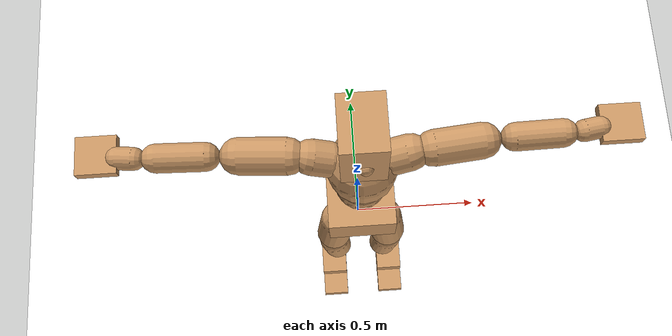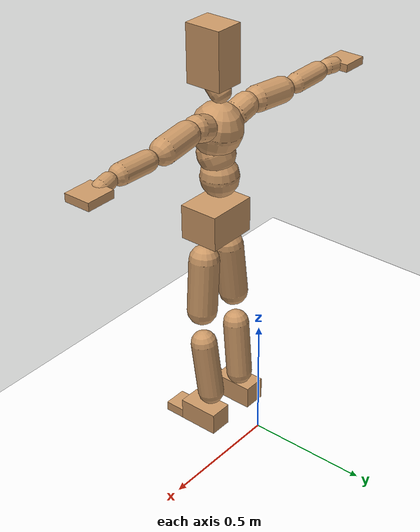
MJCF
<mujoco model="humanoid">
  <option integrator="implicitfast" />

  <visual>
    <global offwidth="1280" offheight="960" />
    <headlight active="1" ambient="0.34 0.34 0.34" diffuse="0.5 0.5 0.5" />
  </visual>

  <default>
    <joint damping="2" stiffness="2" armature="0.01" limited="true" solimplimit="0 .99 .01" />
    <geom condim="1" friction="0.7 0.005 0.0001" solimp=".99 .99 .003" solref="0.015 1" margin="0.001" rgba="0.8 0.6 .4 1" />
    <default class="smplcontact">
      <geom condim="3" friction="1. 0.005 0.0001" solref="0.015 1" solimp="0.98 0.98 0.001" priority="1" />
    </default>
    <default class="stiff_medium">
      <joint stiffness="10" />
    </default>
    <default class="stiff_medium_higher">
      <joint stiffness="50" />
    </default>
    <default class="stiff_high">
      <joint stiffness="100" />
    </default>
  </default>

  <asset>
    <texture type="skybox" builtin="gradient" rgb1="0.99 0.99 0.99" rgb2="0.608 0.828 0.892" width="100" />
    <texture builtin="flat" height="1278" mark="cross" markrgb="1 1 1" name="texgeom" random="0.01" rgb1="0.8 0.6 0.4" rgb2="0.8 0.6 0.4" type="cube" width="127" />
    <texture name="texplane" type="2d" builtin="checker" markrgb="1 1 1" rgb1="0.756 0.772 0.76" rgb2="0.6 0.6 0.6" width="100" height="100" />
    <material name="MatPlane" reflectance="0.5" texture="texplane" texrepeat="1 1" texuniform="true" />
    <material name="geom" texture="texgeom" texuniform="true" />
  </asset>

  <worldbody>
    <light name="tracking_light" pos="0 0 7" dir="0 0 -1" directional="true" cutoff="100" exponent="1" diffuse="1 1 1" specular="0.1 0.1 0.1" mode="trackcom" />
    <camera name="back" pos="0 3 2.4" xyaxes="-1 0 0 0 -1 2" mode="trackcom" />
    <camera name="side" pos="-3 0 2.4" xyaxes="0 -1 0 1 0 2" mode="trackcom" />
    <camera name="front_side" pos="-2.8 -2.8 0.8" xyaxes="0.5 -0.5 0 0.1 0.1 1" mode="trackcom" />
    <geom condim="3" name="floor" pos="0 0 0" rgba="1 1 1 1" size="100 100 .2" type="plane" material="MatPlane" />
    <body name="Pelvis" pos="-0.0018 -0.2233 0.9367" euler="90 0 0">
      <site name="Pelvis" size="0.01" />
      <freejoint name="Pelvis" />
      <geom type="box" pos="-0.0000 -0.0121 -0.0055" size="0.1069 0.0722 0.083" quat="1.0000 0.0000 0.0000 0.0000" density="3165.830099" name="Pelvis" />
      <body name="L_Hip" pos="0.0695 -0.0914 -0.0068">
        <joint name="L_Hip_x" type="hinge" pos="0 0 0" axis="1 0 0" stiffness="10.0" range="-160.0 22.92" class="stiff_medium" damping="15.0" armature="0.01"/>
        <joint name="L_Hip_y" type="hinge" pos="0 0 0" axis="0 1 0" stiffness="10.0" range="-70.0 70.0" class="stiff_medium" damping="10.000000000000004" armature="0.010000000000000009"/>
        <joint name="L_Hip_z" type="hinge" pos="0 0 0" axis="0 0 1" stiffness="10.0" range="-28.65 90.0" class="stiff_medium" damping="9.999999999999998" armature="0.009999999999999997"/>
        <geom type="capsule" density="2040.816327" fromto="0.0069 -0.075 -0.0009 0.0274 -0.3002 -0.0036" size="0.0615" name="L_Hip" />
        <body name="L_Knee" pos="0.0343 -0.3752 -0.0045">
          <joint name="L_Knee_x" type="hinge" pos="0 0 0" axis="1 0 0" range="-5.16 171.89" damping="8.000000000000002" armature="0.010000000000000005" stiffness="2.0"/>
          <joint name="L_Knee_y" type="hinge" pos="0 0 0" axis="0 1 0" range="-4.58 6.88" damping="8.000000000000002" armature="0.010000000000000007" stiffness="2.0"/>
          <joint name="L_Knee_z" type="hinge" pos="0 0 0" axis="0 0 1" range="-6.88 4.58" damping="7.9999999999999964" armature="0.009999999999999992" stiffness="2.0"/>
          <geom type="capsule" density="1234.567901" fromto="-0.0027 -0.0796 -0.0087 -0.0109 -0.3184 -0.035" size="0.0541" name="L_Knee" />
          <body name="L_Ankle" pos="-0.0136 -0.398 -0.0437">
            <joint name="L_Ankle_x" type="hinge" pos="0 0 0" axis="1 0 0" range="-45.84 45.84" class="stiff_medium" damping="6.000000000000055" armature="0.010000000000000182" stiffness="10.0"/>
            <joint name="L_Ankle_y" type="hinge" pos="0 0 0" axis="0 1 0" range="-74.48 22.92" class="stiff_medium" damping="3.0" armature="0.01" stiffness="10.0"/>
            <joint name="L_Ankle_z" type="hinge" pos="0 0 0" axis="0 0 1" range="-4.58 4.58" class="stiff_medium" damping="5.99999999999994" armature="0.0099999999999998" stiffness="10.0"/>
            <geom type="box" pos="0.0233 -0.0239 0.0242" size="0.0483 0.0464 0.085" quat="1.0000 0.0000 0.0000 0.0000" density="449.071558" name="L_Ankle" class="smplcontact" />
            <body name="L_Toe" pos="0.0264 -0.0558 0.1193">
              <joint name="L_Toe_x" type="hinge" pos="0 0 0" axis="1 0 0" range="-91.67 22.92" armature="0.009999999999999626" damping="1.9999999999999625" stiffness="2.0"/>
              <joint name="L_Toe_y" type="hinge" pos="0 0 0" axis="0 1 0" range="-4.58 4.58" armature="0.01" damping="2.0" stiffness="2.0"/>
              <joint name="L_Toe_z" type="hinge" pos="0 0 0" axis="0 0 1" range="-4.58 4.58" armature="0.009999999999999423" damping="1.999999999999942" stiffness="2.0"/>
              <geom type="box" pos="-0.003 0.0055 0.0248" size="0.0478 0.02 0.0496" quat="1.0000 0.0000 0.0000 0.0000" density="423.206892" name="L_Toe" class="smplcontact" />
            </body>
          </body>
        </body>
      </body>
      <body name="R_Hip" pos="-0.0677 -0.0905 -0.0043">
        <joint name="R_Hip_x" type="hinge" pos="0 0 0" axis="1 0 0" stiffness="10.0" range="-160.0 22.92" class="stiff_medium" damping="15.0" armature="0.01"/>
        <joint name="R_Hip_y" type="hinge" pos="0 0 0" axis="0 1 0" stiffness="10.0" range="-70.0 70.0" class="stiff_medium" damping="10.000000000000004" armature="0.010000000000000009"/>
        <joint name="R_Hip_z" type="hinge" pos="0 0 0" axis="0 0 1" stiffness="10.0" range="-90.0 28.65" class="stiff_medium" damping="9.999999999999998" armature="0.009999999999999997"/>
        <geom type="capsule" density="2040.816327" fromto="-0.0077 -0.0765 -0.0018 -0.0306 -0.3061 -0.0071" size="0.0606" name="R_Hip" />
        <body name="R_Knee" pos="-0.0383 -0.3826 -0.0089">
          <joint name="R_Knee_x" type="hinge" pos="0 0 0" axis="1 0 0" range="-5.16 171.89" damping="8.000000000000002" armature="0.010000000000000005" stiffness="2.0"/>
          <joint name="R_Knee_y" type="hinge" pos="0 0 0" axis="0 1 0" range="-6.88 4.58" damping="8.000000000000002" armature="0.010000000000000007" stiffness="2.0"/>
          <joint name="R_Knee_z" type="hinge" pos="0 0 0" axis="0 0 1" range="-4.58 6.88" damping="7.9999999999999964" armature="0.009999999999999992" stiffness="2.0"/>
          <geom type="capsule" density="1234.567901" fromto="0.0032 -0.0797 -0.0085 0.0126 -0.3187 -0.0338" size="0.0541" name="R_Knee" />
          <body name="R_Ankle" pos="0.0158 -0.3984 -0.0423">
            <joint name="R_Ankle_x" type="hinge" pos="0 0 0" axis="1 0 0" range="-45.84 45.84" class="stiff_medium" damping="6.000000000000055" armature="0.010000000000000182" stiffness="10.0"/>
            <joint name="R_Ankle_y" type="hinge" pos="0 0 0" axis="0 1 0" range="-22.92 74.48" class="stiff_medium" damping="3.0" armature="0.01" stiffness="10.0"/>
            <joint name="R_Ankle_z" type="hinge" pos="0 0 0" axis="0 0 1" range="-4.58 4.58" class="stiff_medium" damping="5.99999999999994" armature="0.0099999999999998" stiffness="10.0"/>
            <geom type="box" pos="-0.0212 -0.0174 0.0256" size="0.0483 0.0478 0.0865" quat="1.0000 0.0000 0.0000 0.0000" density="434.700981" name="R_Ankle" class="smplcontact" />
            <body name="R_Toe" pos="-0.0254 -0.0481 0.1233">
              <joint name="R_Toe_x" type="hinge" pos="0 0 0" axis="1 0 0" range="-91.67 22.92" armature="0.009999999999999626" damping="1.9999999999999625" stiffness="2.0"/>
              <joint name="R_Toe_y" type="hinge" pos="0 0 0" axis="0 1 0" range="-4.58 4.58" armature="0.01" damping="2.0" stiffness="2.0"/>
              <joint name="R_Toe_z" type="hinge" pos="0 0 0" axis="0 0 1" range="-4.58 4.58" armature="0.009999999999999423" damping="1.999999999999942" stiffness="2.0"/>
              <geom type="box" pos="0.0042 0.0045 0.0227" size="0.0479 0.0216 0.0493" quat="1.0000 0.0000 0.0000 0.0000" density="407.384095" name="R_Toe" class="smplcontact" />
            </body>
          </body>
        </body>
      </body>
      <body name="Torso" pos="-0.0025 0.109 -0.0267">
        <joint name="Torso_x" type="hinge" pos="0 0 0" axis="1 0 0" range="-25.78 57.3" class="stiff_medium" damping="14.377725126950711" armature="0.009518929822817207" stiffness="9.651831020408164"/>
        <joint name="Torso_y" type="hinge" pos="0 0 0" axis="0 1 0" range="-57.3 57.3" class="stiff_high" damping="17.047281200761134" armature="0.007489541703378378" stiffness="97.00519999999999"/>
        <joint name="Torso_z" type="hinge" pos="0 0 0" axis="0 0 1" range="-34.38 34.38" class="stiff_high" damping="18.565365135129568" armature="0.008825226346331873" stiffness="97.63851063829787"/>
        <geom type="capsule" density="2040.816327" fromto="0.0025 0.0608 0.0005 0.003 0.0743 0.0006" size="0.0769" name="Torso" />
        <body name="Spine" pos="0.0055 0.1352 0.0011">
          <joint name="Spine_x" type="hinge" pos="0 0 0" axis="1 0 0" stiffness="9.58583163265306" range="-25.78 57.3" class="stiff_medium" damping="14.26918361208374" armature="0.009440303089812765"/>
          <joint name="Spine_y" type="hinge" pos="0 0 0" axis="0 1 0" stiffness="9.576922244897958" range="-57.3 57.3" class="stiff_high" damping="6.76738571868883" armature="0.007471983870182017"/>
          <joint name="Spine_z" type="hinge" pos="0 0 0" axis="0 0 1" stiffness="19.01161469387755" range="-34.38 34.38" class="stiff_high" damping="10.689541255547073" armature="0.00834769619738186"/>
          <geom type="capsule" density="2040.816327" fromto="0.0007 0.0238 0.0114 0.0008 0.0291 0.014" size="0.0755" name="Spine" />
          <body name="Chest" pos="0.0015 0.0529 0.0254">
            <joint name="Chest_x" type="hinge" pos="0 0 0" axis="1 0 0" stiffness="9.387211020408163" range="-25.78 57.3" class="stiff_medium" damping="14.087997898862083" armature="0.009396788619791438"/>
            <joint name="Chest_y" type="hinge" pos="0 0 0" axis="0 1 0" stiffness="8.88616191489362" range="-57.3 57.3" class="stiff_high" damping="6.5161693940165115" armature="0.007466043829259931"/>
            <joint name="Chest_z" type="hinge" pos="0 0 0" axis="0 0 1" stiffness="18.95676244897959" range="-34.38 34.38" class="stiff_high" damping="10.53982249103985" armature="0.008138979020284563"/>
            <geom type="capsule" density="2040.816327" fromto="-0.0009 0.0682 -0.0173 -0.001 0.0833 -0.0212" size="0.1002" name="Chest" />
            <body name="Neck" pos="-0.0028 0.2139 -0.0429">
              <joint name="Neck_x" type="hinge" pos="0 0 0" axis="1 0 0" range="-28.65 57.3" class="stiff_medium_higher" damping="10.0" armature="0.01" stiffness="50.0"/>
              <joint name="Neck_y" type="hinge" pos="0 0 0" axis="0 1 0" range="-40.11 40.11" class="stiff_medium_higher" damping="10.0" armature="0.01" stiffness="50.0"/>
              <joint name="Neck_z" type="hinge" pos="0 0 0" axis="0 0 1" range="-40.11 40.11" class="stiff_medium_higher" damping="9.999999999999996" armature="0.009999999999999992" stiffness="50.0"/>
              <geom type="capsule" density="1000" fromto="0.001 0.013 0.0103 0.0041 0.052 0.0411" size="0.0436" name="Neck" />
              <body name="Head" pos="0.0052 0.065 0.0513">
                <joint name="Head_x" type="hinge" pos="0 0 0" axis="1 0 0" range="-28.65 57.3" class="stiff_medium_higher" damping="2.0000000000000004" armature="0.010000000000000005" stiffness="50.0"/>
                <joint name="Head_y" type="hinge" pos="0 0 0" axis="0 1 0" range="-40.11 40.11" class="stiff_medium_higher" damping="1.9999999999999998" armature="0.009999999999999998" stiffness="50.0"/>
                <joint name="Head_z" type="hinge" pos="0 0 0" axis="0 0 1" range="-40.11 40.11" class="stiff_medium_higher" damping="1.9999999999999998" armature="0.009999999999999998" stiffness="50.0"/>
                <geom type="box" pos="-0.0042 0.0876 -0.0116" size="0.0606 0.1154 0.076" quat="1.0000 0.0000 0.0000 0.0000" density="1018.069894" name="Head" />
                <geom type="capsule" name="nose" size="0.02 0.01" pos="0 0.07 0.05" quat="1 0 0 0" mass="0" contype="0" conaffinity="0" />
              </body>
            </body>
            <body name="L_Thorax" pos="0.069935 0.108009 -0.0302637">
              <joint name="L_Thorax_x" type="hinge" pos="0 0 0" axis="1 0 0" range="-10.89 4.58" class="stiff_medium_higher" damping="16.503674429364285" armature="0.00823728971288069" stiffness="41.33205204081632"/>
              <joint name="L_Thorax_y" type="hinge" pos="0 0 0" axis="0 1 0" range="-28.65 17.19" class="stiff_medium_higher" damping="15.615380485833974" armature="0.007397181758642919" stiffness="41.2049"/>
              <joint name="L_Thorax_z" type="hinge" pos="0 0 0" axis="0 0 1" range="-31.51 40.11" class="stiff_medium_higher" damping="15.61484528881393" armature="0.0073964225804993" stiffness="41.206304591836734"/>
              <geom type="capsule" density="1000" fromto="0.0161525 0.00541375 -0.0015975 0.06461 0.021655 -0.00630125" size="0.0521" name="L_Thorax" />
              <body name="L_Shoulder" pos="0.0807625 0.0270687 -0.00789875">
                <joint name="L_Shoulder_x" type="hinge" pos="0 0 0" axis="1 0 0" range="-97.4 97.4" class="stiff_medium" damping="5.053222703168429" armature="0.008561219507331084" stiffness="8.28511887755102"/>
                <joint name="L_Shoulder_y" type="hinge" pos="0 0 0" axis="0 1 0" range="-108.86 80.21" class="stiff_medium" damping="4.696052433643628" armature="0.007424828192243075" stiffness="8.25043724489796"/>
                <joint name="L_Shoulder_z" type="hinge" pos="0 0 0" axis="0 0 1" range="-97.4 85.94" class="stiff_medium" damping="4.696316861704075" armature="0.007423822707357089" stiffness="8.252483979591837"/>
                <geom type="capsule" density="1000" fromto="0.0460612 -0.0023075 -0.00488125 0.184334 -0.0090525 -0.019525" size="0.0517" name="L_Shoulder" />
                <body name="L_Elbow" pos="0.230395 -0.01136 -0.0244062">
                  <joint name="L_Elbow_x" type="hinge" pos="0 0 0" axis="1 0 0" range="-17.19 4.58" damping="4.357905906305443" armature="0.009089595760700035" stiffness="1.6714797346938777"/>
                  <joint name="L_Elbow_y" type="hinge" pos="0 0 0" axis="0 1 0" range="-180.0 17.19" damping="3.9739600722787505" armature="0.007559999182253774" stiffness="1.6711492448979592"/>
                  <joint name="L_Elbow_z" type="hinge" pos="0 0 0" axis="0 0 1" range="-100.84 4.58" damping="3.9732408069423295" armature="0.007554721526974204" stiffness="1.671711387755102"/>
                  <geom type="capsule" density="1000" fromto="0.0441975 0.0015975 -0.0001775 0.176967 0.00639 -0.00079875" size="0.0405" name="L_Elbow" />
                  <body name="L_Wrist" pos="0.221165 0.0079875 -0.001065">
                    <joint name="L_Wrist_x" type="hinge" pos="0 0 0" axis="1 0 0" range="-180.0 22.92" armature="0.009268388983616186" damping="1.7953441559357817" stiffness="1.738846224489796"/>
                    <joint name="L_Wrist_y" type="hinge" pos="0 0 0" axis="0 1 0" range="-17.19 17.19" armature="0.008039907338787667" damping="1.6695812073111274" stiffness="1.7335407551020405"/>
                    <joint name="L_Wrist_z" type="hinge" pos="0 0 0" axis="0 0 1" range="-22.92 22.92" armature="0.007970783232335172" damping="1.6634142634626046" stiffness="1.7356807551020408"/>
                    <geom type="capsule" density="1000" fromto="0.01491 -0.00142 -0.0026625 0.05964 -0.00576875 -0.01065" size="0.0318" name="L_Wrist" class="smplcontact" />
                    <body name="L_Hand" pos="0.07455 -0.0072775 -0.0132237">
                      <joint name="L_Hand_x" type="hinge" pos="0 0 0" axis="1 0 0" range="-17.19 17.19" armature="0.009907489981019538" damping="1.875408510986378" stiffness="1.7749990612244897"/>
                      <joint name="L_Hand_y" type="hinge" pos="0 0 0" axis="0 1 0" range="-51.57 51.57" armature="0.008881214164335" damping="1.7756208279347816" stiffness="1.7749990408163265"/>
                      <joint name="L_Hand_z" type="hinge" pos="0 0 0" axis="0 0 1" range="-91.67 91.67" armature="0.008607646402111164" damping="1.7480597104275881" stiffness="1.7749990000000002"/>
                      <geom type="box" pos="0.0437537 0.0008875 -0.0051475" size="0.0585 0.0158 0.0538" quat="1.0000 0.0000 0.0000 0.0000" density="400.552564" name="L_Hand" class="smplcontact" />
                    </body>
                  </body>
                </body>
              </body>
            </body>
            <body name="R_Thorax" pos="-0.0725975 0.105435 -0.0342575">
              <joint name="R_Thorax_x" type="hinge" pos="0 0 0" axis="1 0 0" range="-10.89 4.58" class="stiff_medium_higher" damping="16.503674429364285" armature="0.00823728971288069" stiffness="41.33205204081632"/>
              <joint name="R_Thorax_y" type="hinge" pos="0 0 0" axis="0 1 0" range="-17.19 28.65" class="stiff_medium_higher" damping="15.615380485833974" armature="0.007397181758642919" stiffness="41.2049"/>
              <joint name="R_Thorax_z" type="hinge" pos="0 0 0" axis="0 0 1" range="-40.11 31.51" class="stiff_medium_higher" damping="15.61484528881393" armature="0.0073964225804993" stiffness="41.206304591836734"/>
              <geom type="capsule" density="1000" fromto="-0.01704 0.00576875 -0.0015975 -0.06816 0.023075 -0.00647875" size="0.0511" name="R_Thorax" />
              <body name="R_Shoulder" pos="-0.0852 0.0289325 -0.00807625">
                <joint name="R_Shoulder_x" type="hinge" pos="0 0 0" axis="1 0 0" range="-97.4 97.4" class="stiff_medium" damping="5.053222703168429" armature="0.008561219507331084" stiffness="8.28511887755102"/>
                <joint name="R_Shoulder_y" type="hinge" pos="0 0 0" axis="0 1 0" range="-80.21 108.86" class="stiff_medium" damping="4.696052433643628" armature="0.007424828192243075" stiffness="8.25043724489796"/>
                <joint name="R_Shoulder_z" type="hinge" pos="0 0 0" axis="0 0 1" range="-85.94 97.4" class="stiff_medium" damping="4.696316861704075" armature="0.007423822707357089" stiffness="8.252483979591837"/>
                <geom type="capsule" density="1000" fromto="-0.0449963 -0.00239625 -0.00381625 -0.180163 -0.00949625 -0.0151763" size="0.0531" name="R_Shoulder" />
                <body name="R_Elbow" pos="-0.225159 -0.0118037 -0.0189925">
                  <joint name="R_Elbow_x" type="hinge" pos="0 0 0" axis="1 0 0" range="-17.19 4.58" damping="4.357905906305443" armature="0.009089595760700035" stiffness="1.6714797346938777"/>
                  <joint name="R_Elbow_y" type="hinge" pos="0 0 0" axis="0 1 0" range="-17.19 180.0" damping="3.9739600722787505" armature="0.007559999182253774" stiffness="1.6711492448979592"/>
                  <joint name="R_Elbow_z" type="hinge" pos="0 0 0" axis="0 0 1" range="-4.58 100.84" damping="3.9732408069423295" armature="0.007554721526974204" stiffness="1.671711387755102"/>
                  <geom type="capsule" density="1000" fromto="-0.0453512 0.00142 -0.00097625 -0.181227 0.0055025 -0.003905" size="0.0408" name="R_Elbow" />
                  <body name="R_Wrist" pos="-0.226579 0.0069225 -0.00497">
                    <joint name="R_Wrist_x" type="hinge" pos="0 0 0" axis="1 0 0" range="-180.0 22.92" armature="0.009268388983616186" damping="1.7953441559357817" stiffness="1.738846224489796"/>
                    <joint name="R_Wrist_y" type="hinge" pos="0 0 0" axis="0 1 0" range="-17.19 17.19" armature="0.008039907338787667" damping="1.6695812073111274" stiffness="1.7335407551020405"/>
                    <joint name="R_Wrist_z" type="hinge" pos="0 0 0" axis="0 0 1" range="-22.92 22.92" armature="0.007970783232335172" damping="1.6634142634626046" stiffness="1.7356807551020408"/>
                    <geom type="capsule" density="1000" fromto="-0.0149987 -0.001065 -0.00186375 -0.0600837 -0.00434875 -0.00736625" size="0.0326" name="R_Wrist" class="smplcontact" />
                    <body name="R_Hand" pos="-0.0750825 -0.00541375 -0.00914125">
                      <joint name="R_Hand_x" type="hinge" pos="0 0 0" axis="1 0 0" range="-17.19 17.19" armature="0.009907489981019538" damping="1.875408510986378" stiffness="1.7749990612244897"/>
                      <joint name="R_Hand_y" type="hinge" pos="0 0 0" axis="0 1 0" range="-51.57 51.57" armature="0.008881214164335" damping="1.7756208279347816" stiffness="1.7749990408163265"/>
                      <joint name="R_Hand_z" type="hinge" pos="0 0 0" axis="0 0 1" range="-91.67 91.67" armature="0.008607646402111164" damping="1.7480597104275881" stiffness="1.7749990000000002"/>
                      <geom type="box" pos="-0.0410025 -0.00079875 -0.00701125" size="0.0569 0.0164 0.0546" quat="1.0000 0.0000 0.0000 0.0000" density="403.679611" name="R_Hand" class="smplcontact" />
                    </body>
                  </body>
                </body>
              </body>
            </body>
          </body>
        </body>
      </body>
    </body>
  </worldbody>
  <actuator>
    <general name="L_Hip_x" joint="L_Hip_x" biastype="affine" gainprm="287.33006409732246" biasprm="-215.3247604770444 -180.0 -2.0" ctrllimited="true" ctrlrange="-1 1" forcerange="-360.0 360.0" />
    <general name="L_Hip_y" joint="L_Hip_y" biastype="affine" gainprm="219.9114857512855" biasprm="0.0 -180.0 -2.000000000000001" ctrllimited="true" ctrlrange="-1 1" forcerange="-360.0 360.0" />
    <general name="L_Hip_z" joint="L_Hip_z" biastype="affine" gainprm="186.3749841742145" biasprm="96.3683546488669 -180.0 -1.9999999999999996" ctrllimited="true" ctrlrange="-1 1" forcerange="-360.0 360.0" />
    <general name="L_Knee_x" joint="L_Knee_x" biastype="affine" gainprm="278.10948965903646" biasprm="261.8988715665131 -180.0 -2.0000000000000004" ctrllimited="true" ctrlrange="-1 1" forcerange="-360.0 360.0" />
    <general name="L_Knee_y" joint="L_Knee_y" biastype="affine" gainprm="18.001325905069514" biasprm="3.612831551628262 -180.0 -2.0000000000000004" ctrllimited="true" ctrlrange="-1 1" forcerange="-360.0 360.0" />
    <general name="L_Knee_z" joint="L_Knee_z" biastype="affine" gainprm="18.001325905069514" biasprm="-3.612831551628262 -180.0 -1.9999999999999991" ctrllimited="true" ctrlrange="-1 1" forcerange="-360.0 360.0" />
    <general name="L_Ankle_x" joint="L_Ankle_x" biastype="affine" gainprm="72.00530362027807" biasprm="0.0 -90.0 -2.000000000000018" ctrllimited="true" ctrlrange="-1 1" forcerange="-180.0 180.0" />
    <general name="L_Ankle_y" joint="L_Ankle_y" biastype="affine" gainprm="76.49778111491148" biasprm="-40.49512930477244 -90.0 -2.0" ctrllimited="true" ctrlrange="-1 1" forcerange="-180.0 180.0" />
    <general name="L_Ankle_z" joint="L_Ankle_z" biastype="affine" gainprm="7.1942471767206255" biasprm="0.0 -90.0 -1.99999999999998" ctrllimited="true" ctrlrange="-1 1" forcerange="-180.0 180.0" />
    <general name="L_Toe_x" joint="L_Toe_x" biastype="affine" gainprm="71.99902043497087" biasprm="-43.19689898685965 -72.0 -0.7999999999999851" ctrllimited="true" ctrlrange="-1 1" forcerange="-144.0 144.0" />
    <general name="L_Toe_y" joint="L_Toe_y" biastype="affine" gainprm="5.755397741376501" biasprm="0.0 -72.0 -0.8" ctrllimited="true" ctrlrange="-1 1" forcerange="-144.0 144.0" />
    <general name="L_Toe_z" joint="L_Toe_z" biastype="affine" gainprm="5.755397741376501" biasprm="0.0 -72.0 -0.7999999999999768" ctrllimited="true" ctrlrange="-1 1" forcerange="-144.0 144.0" />
    <general name="R_Hip_x" joint="R_Hip_x" biastype="affine" gainprm="287.33006409732246" biasprm="-215.3247604770444 -180.0 -2.0" ctrllimited="true" ctrlrange="-1 1" forcerange="-360.0 360.0" />
    <general name="R_Hip_y" joint="R_Hip_y" biastype="affine" gainprm="219.9114857512855" biasprm="0.0 -180.0 -2.000000000000001" ctrllimited="true" ctrlrange="-1 1" forcerange="-360.0 360.0" />
    <general name="R_Hip_z" joint="R_Hip_z" biastype="affine" gainprm="186.3749841742145" biasprm="-96.3683546488669 -180.0 -1.9999999999999996" ctrllimited="true" ctrlrange="-1 1" forcerange="-360.0 360.0" />
    <general name="R_Knee_x" joint="R_Knee_x" biastype="affine" gainprm="278.10948965903646" biasprm="261.8988715665131 -180.0 -2.0000000000000004" ctrllimited="true" ctrlrange="-1 1" forcerange="-360.0 360.0" />
    <general name="R_Knee_y" joint="R_Knee_y" biastype="affine" gainprm="18.001325905069514" biasprm="-3.612831551628262 -180.0 -2.0000000000000004" ctrllimited="true" ctrlrange="-1 1" forcerange="-360.0 360.0" />
    <general name="R_Knee_z" joint="R_Knee_z" biastype="affine" gainprm="18.001325905069514" biasprm="3.612831551628262 -180.0 -1.9999999999999991" ctrllimited="true" ctrlrange="-1 1" forcerange="-360.0 360.0" />
    <general name="R_Ankle_x" joint="R_Ankle_x" biastype="affine" gainprm="72.00530362027807" biasprm="0.0 -90.0 -2.000000000000018" ctrllimited="true" ctrlrange="-1 1" forcerange="-180.0 180.0" />
    <general name="R_Ankle_y" joint="R_Ankle_y" biastype="affine" gainprm="76.49778111491148" biasprm="40.49512930477244 -90.0 -2.0" ctrllimited="true" ctrlrange="-1 1" forcerange="-180.0 180.0" />
    <general name="R_Ankle_z" joint="R_Ankle_z" biastype="affine" gainprm="7.1942471767206255" biasprm="0.0 -90.0 -1.99999999999998" ctrllimited="true" ctrlrange="-1 1" forcerange="-180.0 180.0" />
    <general name="R_Toe_x" joint="R_Toe_x" biastype="affine" gainprm="71.99902043497087" biasprm="-43.19689898685965 -72.0 -0.7999999999999851" ctrllimited="true" ctrlrange="-1 1" forcerange="-144.0 144.0" />
    <general name="R_Toe_y" joint="R_Toe_y" biastype="affine" gainprm="5.755397741376501" biasprm="0.0 -72.0 -0.8" ctrllimited="true" ctrlrange="-1 1" forcerange="-144.0 144.0" />
    <general name="R_Toe_z" joint="R_Toe_z" biastype="affine" gainprm="5.755397741376501" biasprm="0.0 -72.0 -0.7999999999999768" ctrllimited="true" ctrlrange="-1 1" forcerange="-144.0 144.0" />
    <general name="Torso_x" joint="Torso_x" biastype="affine" gainprm="167.94412321258363" biasprm="63.71688449278569 -231.64394448979593 -3.834060033853523" ctrllimited="true" ctrlrange="-1 1" forcerange="-347.4659167346939 347.4659167346939" />
    <general name="Torso_y" joint="Torso_y" biastype="affine" gainprm="232.82962929152654" biasprm="0.0 -232.81248 -3.409456240152227" ctrllimited="true" ctrlrange="-1 1" forcerange="-349.21871999999996 349.21871999999996" />
    <general name="Torso_z" joint="Torso_z" biastype="affine" gainprm="140.60981207084777" biasprm="0.0 -234.33242553191488 -3.7130730270259136" ctrllimited="true" ctrlrange="-1 1" forcerange="-351.49863829787233 351.49863829787233" />
    <general name="Spine_x" joint="Spine_x" biastype="affine" gainprm="166.79571838808337" biasprm="63.28118733259974 -230.05995918367344 -3.805115629888997" ctrllimited="true" ctrlrange="-1 1" forcerange="-345.0899387755102 345.0899387755102" />
    <general name="Spine_y" joint="Spine_y" biastype="affine" gainprm="229.8630646638908" biasprm="0.0 -229.846133877551 -3.383692859344415" ctrllimited="true" ctrlrange="-1 1" forcerange="-344.76920081632653 344.76920081632653" />
    <general name="Spine_z" joint="Spine_z" biastype="affine" gainprm="136.89370883443928" biasprm="0.0 -228.1393763265306 -3.5631804185156914" ctrllimited="true" ctrlrange="-1 1" forcerange="-342.2090644897959 342.2090644897959" />
    <general name="Chest_x" joint="Chest_x" biastype="affine" gainprm="163.33967315636679" biasprm="61.969986734336544 -225.29306448979594 -3.7567994396965556" ctrllimited="true" ctrlrange="-1 1" forcerange="-337.9395967346939 337.9395967346939" />
    <general name="Chest_y" joint="Chest_y" biastype="affine" gainprm="213.2835955669555" biasprm="0.0 -213.26788595744688 -3.2580846970082558" ctrllimited="true" ctrlrange="-1 1" forcerange="-319.9018289361703 319.9018289361703" />
    <general name="Chest_z" joint="Chest_z" biastype="affine" gainprm="136.49874357962614" biasprm="0.0 -227.48114938775507 -3.5132741636799496" ctrllimited="true" ctrlrange="-1 1" forcerange="-341.2217240816326 341.2217240816326" />
    <general name="Neck_x" joint="Neck_x" biastype="affine" gainprm="27.00198885760427" biasprm="9.000662952534757 -36.0 -0.8" ctrllimited="true" ctrlrange="-1 1" forcerange="-72.0 72.0" />
    <general name="Neck_y" joint="Neck_y" biastype="affine" gainprm="25.20185626709732" biasprm="0.0 -36.0 -0.8" ctrllimited="true" ctrlrange="-1 1" forcerange="-72.0 72.0" />
    <general name="Neck_z" joint="Neck_z" biastype="affine" gainprm="25.20185626709732" biasprm="0.0 -36.0 -0.7999999999999997" ctrllimited="true" ctrlrange="-1 1" forcerange="-72.0 72.0" />
    <general name="Head_x" joint="Head_x" biastype="affine" gainprm="18.001325905069514" biasprm="6.000441968356505 -24.0 -0.8000000000000003" ctrllimited="true" ctrlrange="-1 1" forcerange="-48.0 48.0" />
    <general name="Head_y" joint="Head_y" biastype="affine" gainprm="16.801237511398213" biasprm="0.0 -24.0 -0.7999999999999999" ctrllimited="true" ctrlrange="-1 1" forcerange="-48.0 48.0" />
    <general name="Head_z" joint="Head_z" biastype="affine" gainprm="16.801237511398213" biasprm="0.0 -24.0 -0.7999999999999999" ctrllimited="true" ctrlrange="-1 1" forcerange="-48.0 48.0" />
    <general name="L_Thorax_x" joint="L_Thorax_x" biastype="affine" gainprm="13.391705647542844" biasprm="-5.462292348803839 -99.19692489795918 -1.320293954349143" ctrllimited="true" ctrlrange="-1 1" forcerange="-198.39384979591836 198.39384979591836" />
    <general name="L_Thorax_y" joint="L_Thorax_y" biastype="affine" gainprm="39.55961780190927" biasprm="-9.889904450477317 -98.89176 -1.249230438866718" ctrllimited="true" ctrlrange="-1 1" forcerange="-197.78352 197.78352" />
    <general name="L_Thorax_z" joint="L_Thorax_z" biastype="affine" gainprm="61.80969474430838" biasprm="7.4219962971383975 -98.89513102040816 -1.2491876231051144" ctrllimited="true" ctrlrange="-1 1" forcerange="-197.79026204081632 197.79026204081632" />
    <general name="L_Shoulder_x" joint="L_Shoulder_x" biastype="affine" gainprm="67.60460910996468" biasprm="0.0 -39.768570612244886 -1.347526054178248" ctrllimited="true" ctrlrange="-1 1" forcerange="-79.53714122448977 79.53714122448977" />
    <general name="L_Shoulder_y" joint="L_Shoulder_y" biastype="affine" gainprm="65.34136439993874" biasprm="-9.901253980315465 -39.6020987755102 -1.252280648971634" ctrllimited="true" ctrlrange="-1 1" forcerange="-79.2041975510204 79.2041975510204" />
    <general name="L_Shoulder_z" joint="L_Shoulder_z" biastype="affine" gainprm="63.376831969533896" biasprm="-3.9614840971466134 -39.61192310204081 -1.2523511631210866" ctrllimited="true" ctrlrange="-1 1" forcerange="-79.22384620408162 79.22384620408162" />
    <general name="L_Elbow_x" joint="L_Elbow_x" biastype="affine" gainprm="11.43166310683652" biasprm="-6.621647761929654 -60.17327044897959 -0.6972649450088708" ctrllimited="true" ctrlrange="-1 1" forcerange="-120.34654089795919 120.34654089795919" />
    <general name="L_Elbow_y" joint="L_Elbow_y" biastype="affine" gainprm="103.52613409284974" biasprm="-85.47639277679836 -60.16137281632653 -0.6358336115646002" ctrllimited="true" ctrlrange="-1 1" forcerange="-120.32274563265307 120.32274563265307" />
    <general name="L_Elbow_z" joint="L_Elbow_z" biastype="affine" gainprm="55.364857375302314" biasprm="-50.55417540264278 -60.181609959183675 -0.6357185291107728" ctrllimited="true" ctrlrange="-1 1" forcerange="-120.36321991836735 120.36321991836735" />
    <general name="L_Wrist_x" joint="L_Wrist_x" biastype="affine" gainprm="18.475008746127838" biasprm="-14.301470401349109 -10.433077346938775 -0.7181376623743128" ctrllimited="true" ctrlrange="-1 1" forcerange="-20.86615469387755 20.86615469387755" />
    <general name="L_Wrist_y" joint="L_Wrist_y" biastype="affine" gainprm="3.120603210231214" biasprm="0.0 -10.401244530612242 -0.667832482924451" ctrllimited="true" ctrlrange="-1 1" forcerange="-20.802489061224485 20.802489061224485" />
    <general name="L_Wrist_z" joint="L_Wrist_z" biastype="affine" gainprm="4.165940658633199" biasprm="0.0 -10.414084530612245 -0.6653657053850419" ctrllimited="true" ctrlrange="-1 1" forcerange="-20.82816906122449 20.82816906122449" />
    <general name="L_Hand_x" joint="L_Hand_x" biastype="affine" gainprm="3.1952336582294483" biasprm="0.0 -10.649994367346938 -0.7501634043945513" ctrllimited="true" ctrlrange="-1 1" forcerange="-21.299988734693876 21.299988734693876" />
    <general name="L_Hand_y" joint="L_Hand_y" biastype="affine" gainprm="9.585700864476143" biasprm="0.0 -10.64999424489796 -0.7102483311739127" ctrllimited="true" ctrlrange="-1 1" forcerange="-21.29998848979592 21.29998848979592" />
    <general name="L_Hand_z" joint="L_Hand_z" biastype="affine" gainprm="17.03938681481915" biasprm="0.0 -10.649994000000001 -0.6992238841710353" ctrllimited="true" ctrlrange="-1 1" forcerange="-21.299988000000003 21.299988000000003" />
    <general name="R_Thorax_x" joint="R_Thorax_x" biastype="affine" gainprm="13.391705647542844" biasprm="-5.462292348803839 -99.19692489795918 -1.320293954349143" ctrllimited="true" ctrlrange="-1 1" forcerange="-198.39384979591836 198.39384979591836" />
    <general name="R_Thorax_y" joint="R_Thorax_y" biastype="affine" gainprm="39.55961780190927" biasprm="9.889904450477312 -98.89176 -1.249230438866718" ctrllimited="true" ctrlrange="-1 1" forcerange="-197.78352 197.78352" />
    <general name="R_Thorax_z" joint="R_Thorax_z" biastype="affine" gainprm="61.80969474430838" biasprm="-7.4219962971383975 -98.89513102040816 -1.2491876231051144" ctrllimited="true" ctrlrange="-1 1" forcerange="-197.79026204081632 197.79026204081632" />
    <general name="R_Shoulder_x" joint="R_Shoulder_x" biastype="affine" gainprm="67.60460910996468" biasprm="0.0 -39.768570612244886 -1.347526054178248" ctrllimited="true" ctrlrange="-1 1" forcerange="-79.53714122448977 79.53714122448977" />
    <general name="R_Shoulder_y" joint="R_Shoulder_y" biastype="affine" gainprm="65.34136439993874" biasprm="9.901253980315465 -39.6020987755102 -1.252280648971634" ctrllimited="true" ctrlrange="-1 1" forcerange="-79.2041975510204 79.2041975510204" />
    <general name="R_Shoulder_z" joint="R_Shoulder_z" biastype="affine" gainprm="63.376831969533896" biasprm="3.9614840971466045 -39.61192310204081 -1.2523511631210866" ctrllimited="true" ctrlrange="-1 1" forcerange="-79.22384620408162 79.22384620408162" />
    <general name="R_Elbow_x" joint="R_Elbow_x" biastype="affine" gainprm="11.43166310683652" biasprm="-6.621647761929654 -60.17327044897959 -0.6972649450088708" ctrllimited="true" ctrlrange="-1 1" forcerange="-120.34654089795919 120.34654089795919" />
    <general name="R_Elbow_y" joint="R_Elbow_y" biastype="affine" gainprm="103.52613409284974" biasprm="85.47639277679836 -60.16137281632653 -0.6358336115646002" ctrllimited="true" ctrlrange="-1 1" forcerange="-120.32274563265307 120.32274563265307" />
    <general name="R_Elbow_z" joint="R_Elbow_z" biastype="affine" gainprm="55.364857375302314" biasprm="50.55417540264277 -60.181609959183675 -0.6357185291107728" ctrllimited="true" ctrlrange="-1 1" forcerange="-120.36321991836735 120.36321991836735" />
    <general name="R_Wrist_x" joint="R_Wrist_x" biastype="affine" gainprm="18.475008746127838" biasprm="-14.301470401349109 -10.433077346938775 -0.7181376623743128" ctrllimited="true" ctrlrange="-1 1" forcerange="-20.86615469387755 20.86615469387755" />
    <general name="R_Wrist_y" joint="R_Wrist_y" biastype="affine" gainprm="3.120603210231214" biasprm="0.0 -10.401244530612242 -0.667832482924451" ctrllimited="true" ctrlrange="-1 1" forcerange="-20.802489061224485 20.802489061224485" />
    <general name="R_Wrist_z" joint="R_Wrist_z" biastype="affine" gainprm="4.165940658633199" biasprm="0.0 -10.414084530612245 -0.6653657053850419" ctrllimited="true" ctrlrange="-1 1" forcerange="-20.82816906122449 20.82816906122449" />
    <general name="R_Hand_x" joint="R_Hand_x" biastype="affine" gainprm="3.1952336582294483" biasprm="0.0 -10.649994367346938 -0.7501634043945513" ctrllimited="true" ctrlrange="-1 1" forcerange="-21.299988734693876 21.299988734693876" />
    <general name="R_Hand_y" joint="R_Hand_y" biastype="affine" gainprm="9.585700864476143" biasprm="0.0 -10.64999424489796 -0.7102483311739127" ctrllimited="true" ctrlrange="-1 1" forcerange="-21.29998848979592 21.29998848979592" />
    <general name="R_Hand_z" joint="R_Hand_z" biastype="affine" gainprm="17.03938681481915" biasprm="0.0 -10.649994000000001 -0.6992238841710353" ctrllimited="true" ctrlrange="-1 1" forcerange="-21.299988000000003 21.299988000000003" />
  </actuator>
  <contact>
    <exclude body1="Torso" body2="Chest" />
    <exclude body1="Head" body2="Chest" />
    <exclude body1="R_Knee" body2="R_Toe" />
    <exclude body1="R_Knee" body2="L_Ankle" />
    <exclude body1="R_Knee" body2="L_Toe" />
    <exclude body1="L_Knee" body2="L_Toe" />
    <exclude body1="L_Knee" body2="R_Ankle" />
    <exclude body1="L_Knee" body2="R_Toe" />
    <exclude body1="L_Shoulder" body2="Chest" />
    <exclude body1="R_Shoulder" body2="Chest" />
  </contact>
  <sensor>
    <framelinvel name="sensor_Pelvis_framelinvel" objtype="xbody" objname="Pelvis" />
    <framelinvel name="sensor_L_Hip_framelinvel" objtype="xbody" objname="L_Hip" />
    <framelinvel name="sensor_L_Knee_framelinvel" objtype="xbody" objname="L_Knee" />
    <framelinvel name="sensor_L_Ankle_framelinvel" objtype="xbody" objname="L_Ankle" />
    <framelinvel name="sensor_L_Toe_framelinvel" objtype="xbody" objname="L_Toe" />
    <framelinvel name="sensor_R_Hip_framelinvel" objtype="xbody" objname="R_Hip" />
    <framelinvel name="sensor_R_Knee_framelinvel" objtype="xbody" objname="R_Knee" />
    <framelinvel name="sensor_R_Ankle_framelinvel" objtype="xbody" objname="R_Ankle" />
    <framelinvel name="sensor_R_Toe_framelinvel" objtype="xbody" objname="R_Toe" />
    <framelinvel name="sensor_Torso_framelinvel" objtype="xbody" objname="Torso" />
    <framelinvel name="sensor_Spine_framelinvel" objtype="xbody" objname="Spine" />
    <framelinvel name="sensor_Chest_framelinvel" objtype="xbody" objname="Chest" />
    <framelinvel name="sensor_Neck_framelinvel" objtype="xbody" objname="Neck" />
    <framelinvel name="sensor_Head_framelinvel" objtype="xbody" objname="Head" />
    <framelinvel name="sensor_L_Thorax_framelinvel" objtype="xbody" objname="L_Thorax" />
    <framelinvel name="sensor_L_Shoulder_framelinvel" objtype="xbody" objname="L_Shoulder" />
    <framelinvel name="sensor_L_Elbow_framelinvel" objtype="xbody" objname="L_Elbow" />
    <framelinvel name="sensor_L_Wrist_framelinvel" objtype="xbody" objname="L_Wrist" />
    <framelinvel name="sensor_L_Hand_framelinvel" objtype="xbody" objname="L_Hand" />
    <framelinvel name="sensor_R_Thorax_framelinvel" objtype="xbody" objname="R_Thorax" />
    <framelinvel name="sensor_R_Shoulder_framelinvel" objtype="xbody" objname="R_Shoulder" />
    <framelinvel name="sensor_R_Elbow_framelinvel" objtype="xbody" objname="R_Elbow" />
    <framelinvel name="sensor_R_Wrist_framelinvel" objtype="xbody" objname="R_Wrist" />
    <framelinvel name="sensor_R_Hand_framelinvel" objtype="xbody" objname="R_Hand" />
    <frameangvel name="sensor_Pelvis_frameangvel" objtype="xbody" objname="Pelvis" />
    <frameangvel name="sensor_L_Hip_frameangvel" objtype="xbody" objname="L_Hip" />
    <frameangvel name="sensor_L_Knee_frameangvel" objtype="xbody" objname="L_Knee" />
    <frameangvel name="sensor_L_Ankle_frameangvel" objtype="xbody" objname="L_Ankle" />
    <frameangvel name="sensor_L_Toe_frameangvel" objtype="xbody" objname="L_Toe" />
    <frameangvel name="sensor_R_Hip_frameangvel" objtype="xbody" objname="R_Hip" />
    <frameangvel name="sensor_R_Knee_frameangvel" objtype="xbody" objname="R_Knee" />
    <frameangvel name="sensor_R_Ankle_frameangvel" objtype="xbody" objname="R_Ankle" />
    <frameangvel name="sensor_R_Toe_frameangvel" objtype="xbody" objname="R_Toe" />
    <frameangvel name="sensor_Torso_frameangvel" objtype="xbody" objname="Torso" />
    <frameangvel name="sensor_Spine_frameangvel" objtype="xbody" objname="Spine" />
    <frameangvel name="sensor_Chest_frameangvel" objtype="xbody" objname="Chest" />
    <frameangvel name="sensor_Neck_frameangvel" objtype="xbody" objname="Neck" />
    <frameangvel name="sensor_Head_frameangvel" objtype="xbody" objname="Head" />
    <frameangvel name="sensor_L_Thorax_frameangvel" objtype="xbody" objname="L_Thorax" />
    <frameangvel name="sensor_L_Shoulder_frameangvel" objtype="xbody" objname="L_Shoulder" />
    <frameangvel name="sensor_L_Elbow_frameangvel" objtype="xbody" objname="L_Elbow" />
    <frameangvel name="sensor_L_Wrist_frameangvel" objtype="xbody" objname="L_Wrist" />
    <frameangvel name="sensor_L_Hand_frameangvel" objtype="xbody" objname="L_Hand" />
    <frameangvel name="sensor_R_Thorax_frameangvel" objtype="xbody" objname="R_Thorax" />
    <frameangvel name="sensor_R_Shoulder_frameangvel" objtype="xbody" objname="R_Shoulder" />
    <frameangvel name="sensor_R_Elbow_frameangvel" objtype="xbody" objname="R_Elbow" />
    <frameangvel name="sensor_R_Wrist_frameangvel" objtype="xbody" objname="R_Wrist" />
    <frameangvel name="sensor_R_Hand_frameangvel" objtype="xbody" objname="R_Hand" />
    <subtreelinvel name="Chest_subtreelinvel" body="Chest" />
    <gyro name="Pelvis_gyro" site="Pelvis" />
  </sensor>
</mujoco>
